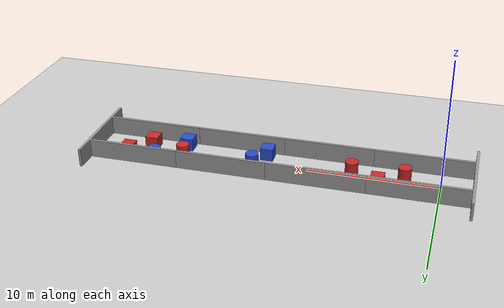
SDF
<sdf version="1.7">
 <world name="default">
  <light name="sun" type="directional">
   <pose>0 0 10 0 -0 0</pose>
   <diffuse>0.8 0.8 0.8 1</diffuse>
   <specular>0.2 0.2 0.2 1</specular>
   <attenuation>
    <range>1000</range>
    <constant>0.9</constant>
    <linear>0.01</linear>
    <quadratic>0.001</quadratic>
   </attenuation>
   <direction>-0.5 0.1 -0.9</direction>
   <spot><inner_angle>0</inner_angle><outer_angle>0</outer_angle><falloff>0</falloff></spot>
  </light>
  <model name="ground_plane">
   <static>1</static>
   <link name="link">
    <collision name="collision">
     <geometry><plane><normal>0 0 1</normal><size>100 100</size></plane></geometry>
     <surface>
      <contact><collide_bitmask>65535</collide_bitmask></contact>
      <friction><ode><mu>100</mu><mu2>50</mu2></ode></friction>
     </surface>
    </collision>
    <visual name="visual">
     <cast_shadows>0</cast_shadows>
     <geometry><plane><normal>0 0 1</normal><size>100 100</size></plane></geometry>
     <material>
      <script><uri>file://media/materials/scripts/gazebo.material</uri><name>Gazebo/Grey</name></script>
     </material>
    </visual>
   </link>
  </model>
  <gravity>0 0 -9.8</gravity>
  <magnetic_field>6e-06 2.3e-05 -4.2e-05</magnetic_field>
  <atmosphere type="adiabatic"/>
  <physics type="ode">
   <max_step_size>0.001</max_step_size>
   <real_time_factor>1</real_time_factor>
   <real_time_update_rate>1000</real_time_update_rate>
  </physics>
  <scene><ambient>0.4 0.4 0.4 1</ambient><background>0.7 0.7 0.7 1</background><shadows>1</shadows></scene>
  <audio><device>default</device></audio>
  <spherical_coordinates>
   <surface_model>EARTH_WGS84</surface_model>
   <latitude_deg>0</latitude_deg>
   <longitude_deg>0</longitude_deg>
   <elevation>0</elevation>
   <heading_deg>0</heading_deg>
  </spherical_coordinates>
  <model name="grey_wall">
   <static>1</static>
   <link name="link">
    <pose>1.5 -2 0 0 -0 0</pose>
    <collision name="collision"><geometry><box><size>7.5 0.2 2.8</size></box></geometry></collision>
    <visual name="visual">
     <cast_shadows>0</cast_shadows>
     <geometry><box><size>7.5 0.2 2.8</size></box></geometry>
     <material>
      <script>
       <uri>model://grey_wall/materials/scripts</uri>
       <uri>model://grey_wall/materials/textures</uri>
       <name>vrc/grey_wall</name>
      </script>
     </material>
    </visual>
   </link>
  </model>
  <model name="grey_wall_0">
   <static>1</static>
   <pose>1.5 2 0 0 -0 0</pose>
   <link name="link">
    <collision name="collision"><geometry><box><size>7.5 0.2 2.8</size></box></geometry></collision>
    <visual name="visual">
     <cast_shadows>0</cast_shadows>
     <geometry><box><size>7.5 0.2 2.8</size></box></geometry>
     <material>
      <script>
       <uri>model://grey_wall/materials/scripts</uri>
       <uri>model://grey_wall/materials/textures</uri>
       <name>vrc/grey_wall</name>
      </script>
     </material>
    </visual>
   </link>
  </model>
  <model name="grey_wall_1">
   <static>1</static>
   <pose>9 -2 0 0 -0 0</pose>
   <link name="link">
    <collision name="collision"><geometry><box><size>7.5 0.2 2.8</size></box></geometry></collision>
    <visual name="visual">
     <cast_shadows>0</cast_shadows>
     <geometry><box><size>7.5 0.2 2.8</size></box></geometry>
     <material>
      <script>
       <uri>model://grey_wall/materials/scripts</uri>
       <uri>model://grey_wall/materials/textures</uri>
       <name>vrc/grey_wall</name>
      </script>
     </material>
    </visual>
   </link>
  </model>
  <model name="grey_wall_2">
   <static>1</static>
   <pose>9 2 0 0 -0 0</pose>
   <link name="link">
    <collision name="collision"><geometry><box><size>7.5 0.2 2.8</size></box></geometry></collision>
    <visual name="visual">
     <cast_shadows>0</cast_shadows>
     <geometry><box><size>7.5 0.2 2.8</size></box></geometry>
     <material>
      <script>
       <uri>model://grey_wall/materials/scripts</uri>
       <uri>model://grey_wall/materials/textures</uri>
       <name>vrc/grey_wall</name>
      </script>
     </material>
    </visual>
   </link>
  </model>
  <model name="grey_wall_3">
   <static>1</static>
   <pose>16 2 0 0 -0 0</pose>
   <link name="link">
    <collision name="collision"><geometry><box><size>7.5 0.2 2.8</size></box></geometry></collision>
    <visual name="visual">
     <cast_shadows>0</cast_shadows>
     <geometry><box><size>7.5 0.2 2.8</size></box></geometry>
     <material>
      <script>
       <uri>model://grey_wall/materials/scripts</uri>
       <uri>model://grey_wall/materials/textures</uri>
       <name>vrc/grey_wall</name>
      </script>
     </material>
    </visual>
   </link>
  </model>
  <model name="grey_wall_4">
   <static>1</static>
   <pose>16 -2 0 0 -0 0</pose>
   <link name="link">
    <collision name="collision"><geometry><box><size>7.5 0.2 2.8</size></box></geometry></collision>
    <visual name="visual">
     <cast_shadows>0</cast_shadows>
     <geometry><box><size>7.5 0.2 2.8</size></box></geometry>
     <material>
      <script>
       <uri>model://grey_wall/materials/scripts</uri>
       <uri>model://grey_wall/materials/textures</uri>
       <name>vrc/grey_wall</name>
      </script>
     </material>
    </visual>
   </link>
  </model>
  <model name="grey_wall_5">
   <static>1</static>
   <pose>23 2 0 0 -0 0</pose>
   <link name="link">
    <collision name="collision"><geometry><box><size>7.5 0.2 2.8</size></box></geometry></collision>
    <visual name="visual">
     <cast_shadows>0</cast_shadows>
     <geometry><box><size>7.5 0.2 2.8</size></box></geometry>
     <material>
      <script>
       <uri>model://grey_wall/materials/scripts</uri>
       <uri>model://grey_wall/materials/textures</uri>
       <name>vrc/grey_wall</name>
      </script>
     </material>
    </visual>
   </link>
  </model>
  <model name="grey_wall_6">
   <static>1</static>
   <pose>23 -2 0 0 -0 0</pose>
   <link name="link">
    <collision name="collision"><geometry><box><size>7.5 0.2 2.8</size></box></geometry></collision>
    <visual name="visual">
     <cast_shadows>0</cast_shadows>
     <geometry><box><size>7.5 0.2 2.8</size></box></geometry>
     <material>
      <script>
       <uri>model://grey_wall/materials/scripts</uri>
       <uri>model://grey_wall/materials/textures</uri>
       <name>vrc/grey_wall</name>
      </script>
     </material>
    </visual>
   </link>
  </model>
  <model name="grey_wall_7">
   <static>1</static>
   <pose>26.8522 1.4e-05 0 0 -0 1.57071</pose>
   <link name="link">
    <collision name="collision"><geometry><box><size>7.5 0.2 2.8</size></box></geometry></collision>
    <visual name="visual">
     <cast_shadows>0</cast_shadows>
     <geometry><box><size>7.5 0.2 2.8</size></box></geometry>
     <material>
      <script>
       <uri>model://grey_wall/materials/scripts</uri>
       <uri>model://grey_wall/materials/textures</uri>
       <name>vrc/grey_wall</name>
      </script>
     </material>
    </visual>
   </link>
  </model>
  <model name="grey_wall_8">
   <static>1</static>
   <pose>-2.35534 1.3e-05 0 0 -0 1.57071</pose>
   <link name="link">
    <collision name="collision"><geometry><box><size>7.5 0.2 2.8</size></box></geometry></collision>
    <visual name="visual">
     <cast_shadows>0</cast_shadows>
     <geometry><box><size>7.5 0.2 2.8</size></box></geometry>
     <material>
      <script>
       <uri>model://grey_wall/materials/scripts</uri>
       <uri>model://grey_wall/materials/textures</uri>
       <name>vrc/grey_wall</name>
      </script>
     </material>
    </visual>
   </link>
  </model>
  <model name="unit_cylinder">
   <static>1</static>
   <pose>2.74373 -0.621126 0.499998 0 -0 0</pose>
   <link name="link">
    <inertial>
     <mass>1</mass>
     <inertia><ixx>0.145833</ixx><ixy>0</ixy><ixz>0</ixz><iyy>0.145833</iyy><iyz>0</iyz><izz>0.125</izz></inertia>
    </inertial>
    <collision name="collision">
     <geometry><cylinder><radius>0.5</radius><length>1</length></cylinder></geometry>
    </collision>
    <visual name="visual">
     <geometry><cylinder><radius>0.5</radius><length>1</length></cylinder></geometry>
     <material>
      <script><name>Gazebo/Red</name><uri>file://media/materials/scripts/gazebo.material</uri></script>
     </material>
    </visual>
   </link>
  </model>
  <model name="unit_box">
   <static>1</static>
   <pose>4.55944 0.981523 0.499995 -1e-05 -0 -0</pose>
   <link name="link">
    <inertial>
     <mass>1</mass>
     <inertia>
      <ixx>0.166667</ixx>
      <ixy>0</ixy>
      <ixz>0</ixz>
      <iyy>0.166667</iyy>
      <iyz>0</iyz>
      <izz>0.166667</izz>
     </inertia>
    </inertial>
    <collision name="collision"><geometry><box><size>1 1 1</size></box></geometry></collision>
    <visual name="visual">
     <geometry><box><size>1 1 1</size></box></geometry>
     <material>
      <script><name>Gazebo/Red</name><uri>file://media/materials/scripts/gazebo.material</uri></script>
     </material>
    </visual>
   </link>
  </model>
  <model name="unit_cylinder_0">
   <static>1</static>
   <pose>6.71805 -0.495055 0.499993 0 -0 0</pose>
   <link name="link">
    <inertial>
     <mass>1</mass>
     <inertia><ixx>0.145833</ixx><ixy>0</ixy><ixz>0</ixz><iyy>0.145833</iyy><iyz>0</iyz><izz>0.125</izz></inertia>
    </inertial>
    <collision name="collision">
     <geometry><cylinder><radius>0.5</radius><length>1</length></cylinder></geometry>
    </collision>
    <visual name="visual">
     <geometry><cylinder><radius>0.5</radius><length>1</length></cylinder></geometry>
     <material>
      <script><name>Gazebo/Red</name><uri>file://media/materials/scripts/gazebo.material</uri></script>
     </material>
    </visual>
   </link>
  </model>
  <model name="unit_cylinder_1">
   <static>1</static>
   <pose>19.8942 0.19831 0.5 0 -0 0</pose>
   <link name="link">
    <inertial>
     <mass>1</mass>
     <inertia><ixx>0.145833</ixx><ixy>0</ixy><ixz>0</ixz><iyy>0.145833</iyy><iyz>0</iyz><izz>0.125</izz></inertia>
    </inertial>
    <collision name="collision">
     <geometry><cylinder><radius>0.5</radius><length>1</length></cylinder></geometry>
    </collision>
    <visual name="visual">
     <geometry><cylinder><radius>0.5</radius><length>1</length></cylinder></geometry>
     <material>
      <script><name>Gazebo/Red</name><uri>file://media/materials/scripts/gazebo.material</uri></script>
     </material>
    </visual>
   </link>
  </model>
  <model name="unit_box_0">
   <static>1</static>
   <pose>22.6542 -0.659029 0.499995 0 -0 0</pose>
   <link name="link">
    <inertial>
     <mass>1</mass>
     <inertia>
      <ixx>0.166667</ixx>
      <ixy>0</ixy>
      <ixz>0</ixz>
      <iyy>0.166667</iyy>
      <iyz>0</iyz>
      <izz>0.166667</izz>
     </inertia>
    </inertial>
    <collision name="collision"><geometry><box><size>1 1 1</size></box></geometry></collision>
    <visual name="visual">
     <geometry><box><size>1 1 1</size></box></geometry>
     <material>
      <script><name>Gazebo/Red</name><uri>file://media/materials/scripts/gazebo.material</uri></script>
     </material>
    </visual>
   </link>
  </model>
  <model name="unit_box_1">
   <static>1</static>
   <pose>24.0678 1.03174 0.499995 0 -0 0</pose>
   <link name="link">
    <inertial>
     <mass>1</mass>
     <inertia>
      <ixx>0.166667</ixx>
      <ixy>0</ixy>
      <ixz>0</ixz>
      <iyy>0.166667</iyy>
      <iyz>0</iyz>
      <izz>0.166667</izz>
     </inertia>
    </inertial>
    <collision name="collision"><geometry><box><size>1 1 1</size></box></geometry></collision>
    <visual name="visual">
     <geometry><box><size>1 1 1</size></box></geometry>
     <material>
      <script><name>Gazebo/Red</name><uri>file://media/materials/scripts/gazebo.material</uri></script>
     </material>
    </visual>
   </link>
  </model>
  <model name="unit_box_2">
   <static>1</static>
   <pose>13.3988 -1.118573 0.499995 0 0 0</pose>
   <link name="link">
    <inertial>
     <mass>1</mass>
     <inertia>
      <ixx>0.166667</ixx>
      <ixy>0</ixy>
      <ixz>0</ixz>
      <iyy>0.166667</iyy>
      <iyz>0</iyz>
      <izz>0.166667</izz>
     </inertia>
    </inertial>
    <collision name="collision"><geometry><box><size>1 1 1</size></box></geometry></collision>
    <visual name="visual">
     <geometry><box><size>1 1 1</size></box></geometry>
     <material>
      <script><name>Gazebo/Blue</name><uri>file://media/materials/scripts/gazebo.material</uri></script>
     </material>
    </visual>
   </link>
  </model>
  <model name="unit_cylinder_2">
   <static>1</static>
   <pose>14.2937 0.237137 0.499993 0 -0 0</pose>
   <link name="link">
    <inertial>
     <mass>1</mass>
     <inertia><ixx>0.145833</ixx><ixy>0</ixy><ixz>0</ixz><iyy>0.145833</iyy><iyz>0</iyz><izz>0.125</izz></inertia>
    </inertial>
    <collision name="collision">
     <geometry><cylinder><radius>0.5</radius><length>1</length></cylinder></geometry>
    </collision>
    <visual name="visual">
     <geometry><cylinder><radius>0.5</radius><length>1</length></cylinder></geometry>
     <material>
      <script><name>Gazebo/Blue</name><uri>file://media/materials/scripts/gazebo.material</uri></script>
     </material>
    </visual>
   </link>
  </model>
  <model name="unit_box_3">
   <static>1</static>
   <pose>19.8929 -1.09438 0.499995 0 -0 0</pose>
   <link name="link">
    <inertial>
     <mass>1</mass>
     <inertia>
      <ixx>0.166667</ixx>
      <ixy>0</ixy>
      <ixz>0</ixz>
      <iyy>0.166667</iyy>
      <iyz>0</iyz>
      <izz>0.166667</izz>
     </inertia>
    </inertial>
    <collision name="collision"><geometry><box><size>1 1 1</size></box></geometry></collision>
    <visual name="visual">
     <geometry><box><size>1 1 1</size></box></geometry>
     <material>
      <script><name>Gazebo/Blue</name><uri>file://media/materials/scripts/gazebo.material</uri></script>
     </material>
    </visual>
   </link>
  </model>
  <model name="unit_cylinder_3">
   <static>1</static>
   <pose>21.8573 1.19051 0.5 0 -0 0</pose>
   <link name="link">
    <inertial>
     <mass>1</mass>
     <inertia><ixx>0.145833</ixx><ixy>0</ixy><ixz>0</ixz><iyy>0.145833</iyy><iyz>0</iyz><izz>0.125</izz></inertia>
    </inertial>
    <collision name="collision">
     <geometry><cylinder><radius>0.5</radius><length>1</length></cylinder></geometry>
    </collision>
    <visual name="visual">
     <geometry><cylinder><radius>0.5</radius><length>1</length></cylinder></geometry>
     <material>
      <script><name>Gazebo/Blue</name><uri>file://media/materials/scripts/gazebo.material</uri></script>
     </material>
    </visual>
   </link>
  </model>
 </world>
</sdf>
